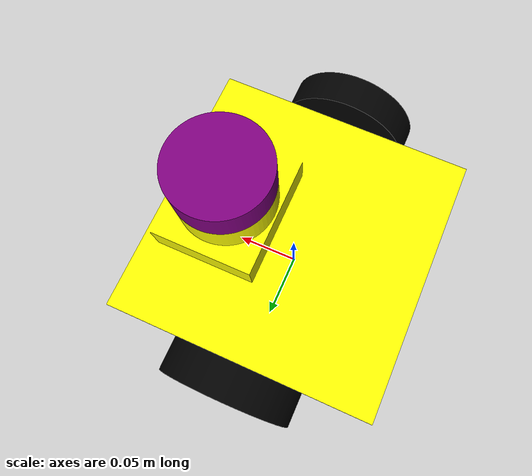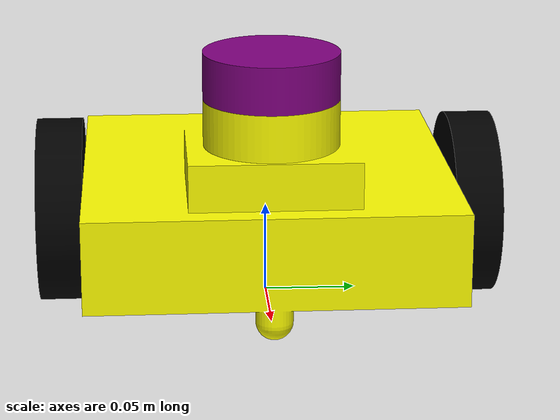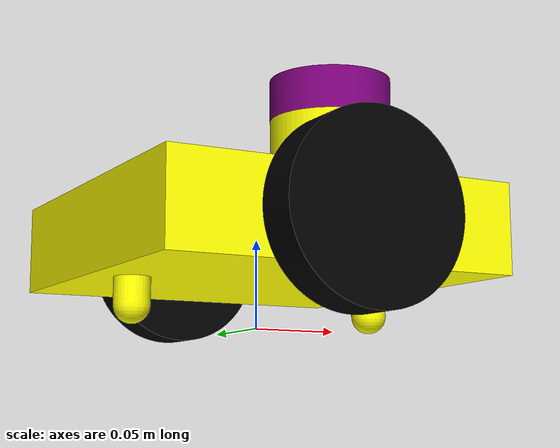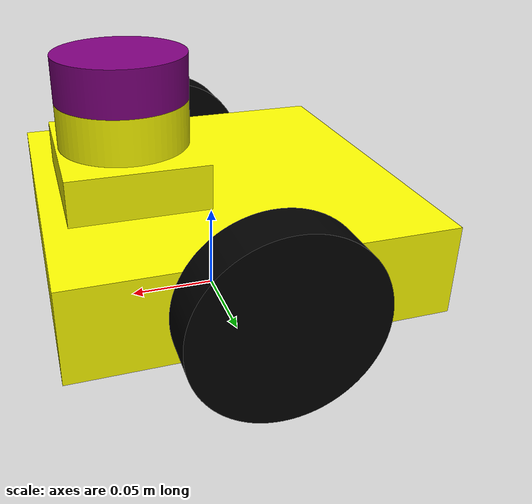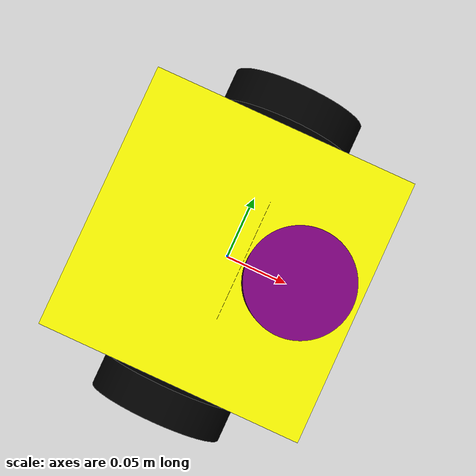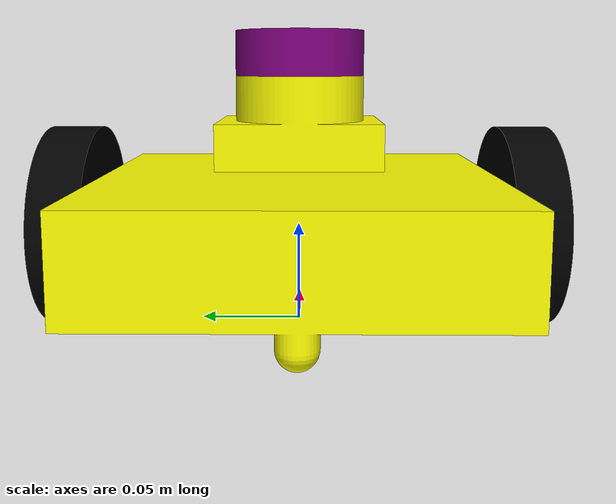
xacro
<?xml version="1.0"?>
<robot name="diff_drive" xmlns:xacro="http://www.ros.org/wiki/xacro">

    <xacro:include filename="$(find control_drive)/urdf/materials.xacro" />
    <xacro:include filename="$(find control_drive)/urdf/diff_drive.trans" />
    <xacro:include filename="$(find control_drive)/urdf/diff_drive.gazebo" />

    <link name="base_link">
        <inertial>
            <origin xyz="0.00592205992127558 -1.59270492016768e-17 0.05534127750729263" rpy="0 0 0" />
            <mass value="2.4212002403503776" />
            <inertia ixx="0.008303" iyy="0.008979" izz="0.015122" ixy="-0.0" iyz="-0.0"
                ixz="-0.000596" />
        </inertial>
        <visual>
            <origin xyz="0 0 0" rpy="0 0 0" />
            <geometry>
                <mesh filename="file://$(find control_drive)/meshes/base_link.stl"
                    scale="0.001 0.001 0.001" />
            </geometry>
            <material name="yellow" />
        </visual>
        <collision>
            <origin xyz="0 0 0" rpy="0 0 0" />
            <geometry>
                <mesh filename="file://$(find control_drive)/meshes/base_link.stl"
                    scale="0.001 0.001 0.001" />
            </geometry>
        </collision>
    </link>

    <link name="right_wheel_1">
        <inertial>
            <origin xyz="1.737006930036608e-17 -0.012499999999999997 0.0" rpy="0 0 0" />
            <mass value="0.18260507298990675" />
            <inertia ixx="0.000124" iyy="0.000228" izz="0.000124" ixy="0.0" iyz="-0.0" ixz="0.0" />
        </inertial>
        <visual>
            <origin xyz="-0.0 0.1 -0.05" rpy="0 0 0" />
            <geometry>
                <mesh filename="file://$(find control_drive)/meshes/right_wheel_1.stl"
                    scale="0.001 0.001 0.001" />
            </geometry>
            <material name="black" />
        </visual>
        <collision>
            <origin xyz="-0.0 0.1 -0.05" rpy="0 0 0" />
            <geometry>
                <mesh filename="file://$(find control_drive)/meshes/right_wheel_1.stl"
                    scale="0.001 0.001 0.001" />
            </geometry>
        </collision>
    </link>

    <link name="left_wheel_1">
        <inertial>
            <origin xyz="1.737006930036608e-17 0.012499999999999997 0.0" rpy="0 0 0" />
            <mass value="0.18260507298990675" />
            <inertia ixx="0.000124" iyy="0.000228" izz="0.000124" ixy="-0.0" iyz="0.0" ixz="0.0" />
        </inertial>
        <visual>
            <origin xyz="-0.0 -0.1 -0.05" rpy="0 0 0" />
            <geometry>
                <mesh filename="file://$(find control_drive)/meshes/left_wheel_1.stl"
                    scale="0.001 0.001 0.001" />
            </geometry>
            <material name="black" />
        </visual>
        <collision>
            <origin xyz="-0.0 -0.1 -0.05" rpy="0 0 0" />
            <geometry>
                <mesh filename="file://$(find control_drive)/meshes/left_wheel_1.stl"
                    scale="0.001 0.001 0.001" />
            </geometry>
        </collision>
    </link>

    <link name="lidar_1">
        <inertial>
            <origin xyz="0.0 5.584513020951031e-18 0.012500000000000011" rpy="0 0 0" />
            <mass value="0.10789485809488784" />
            <inertia ixx="4.1e-05" iyy="4.1e-05" izz="7e-05" ixy="0.0" iyz="-0.0" ixz="0.0" />
        </inertial>
        <visual>
            <origin xyz="-0.05 -0.0 -0.125" rpy="0 0 0" />
            <geometry>
                <mesh filename="file://$(find control_drive)/meshes/lidar_1.stl"
                    scale="0.001 0.001 0.001" />
            </geometry>
            <material name="purple" />
        </visual>
        <collision>
            <origin xyz="-0.05 -0.0 -0.125" rpy="0 0 0" />
            <geometry>
                <mesh filename="file://$(find control_drive)/meshes/lidar_1.stl"
                    scale="0.001 0.001 0.001" />
            </geometry>
        </collision>
    </link>

    <joint name="Revolute_1" type="continuous">
        <origin xyz="0.0 -0.1 0.05" rpy="0 0 0" />
        <parent link="base_link" />
        <child link="right_wheel_1" />
        <axis xyz="0.0 1.0 0.0" />
    </joint>

    <joint name="Revolute_2" type="continuous">
        <origin xyz="0.0 0.1 0.05" rpy="0 0 0" />
        <parent link="base_link" />
        <child link="left_wheel_1" />
        <axis xyz="0.0 1.0 0.0" />
    </joint>

    <joint name="Rigid_3" type="fixed">
        <origin xyz="0.05 0.0 0.125" rpy="0 0 0" />
        <parent link="base_link" />
        <child link="lidar_1" />
    </joint>

</robot>

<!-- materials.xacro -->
<robot name="diff_drive" xmlns:xacro="http://www.ros.org/wiki/xacro">

  <material name="silver">
    <color rgba="0.700 0.700 0.700 1.000"/>
  </material>

  <material name="purple">
    <color rgba="0.5 0.0 0.5 1.0"/>
  </material>

  <material name="black">
    <color rgba="0.0 0.0 0.0 1.0"/>
  </material>

  <material name="yellow">
    <color rgba="1.0 1.0 0.0 1.0"/>
  </material>

</robot>

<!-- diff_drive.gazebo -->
<robot name="diff_drive" xmlns:xacro="http://www.ros.org/wiki/xacro">

    <xacro:property name="body_color" value="Gazebo/Silver" />

    <gazebo>
        <plugin name="gz_ros2_control::GazeboSimROS2ControlPlugin"
            filename="libgz_ros2_control-system.so">
            <robot_param>robot_description</robot_param>
            <robot_param_node>robot_state_publisher</robot_param_node>
            <parameters>$(find control_drive)/config/control_drive_controller.yaml</parameters>
        </plugin>
    </gazebo>

    <gazebo reference="base_link">
        <material>${body_color}</material>
        <mu1>0.2</mu1>
        <mu2>0.2</mu2>
        <self_collide>true</self_collide>
        <gravity>true</gravity>
    </gazebo>

    <gazebo reference="right_wheel_1">
        <dynamics damping="0.7" friction="1.0" />
        <material>${body_color}</material>
        <mu1>0.2</mu1>
        <mu2>0.2</mu2>
        <self_collide>true</self_collide>
    </gazebo>

    <gazebo reference="left_wheel_1">
        <dynamics damping="0.7" friction="1.0" />
        <material>${body_color}</material>
        <mu1>0.2</mu1>
        <mu2>0.2</mu2>
        <self_collide>true</self_collide>
    </gazebo>

    <gazebo reference="lidar_1">
        <material>${body_color}</material>
        <mu1>0.2</mu1>
        <mu2>0.2</mu2>
        <self_collide>true</self_collide>
    </gazebo>

    <ros2_control name="GazeboSimSystem" type="system">
        <hardware>
            <plugin>gz_ros2_control/GazeboSimSystem</plugin>
        </hardware>

        <joint name="Revolute_1">
            <command_interface name="velocity" />
            <state_interface name="position" />
            <state_interface name="velocity" />
        </joint>

        <joint name="Revolute_2">
            <command_interface name="velocity" />
            <state_interface name="position" />
            <state_interface name="velocity" />
        </joint>
    </ros2_control>

</robot>
